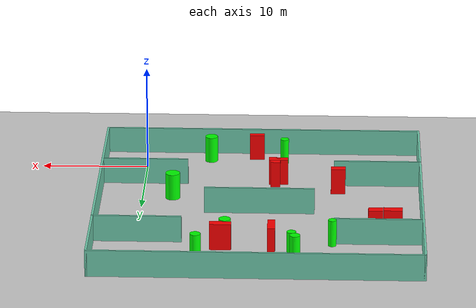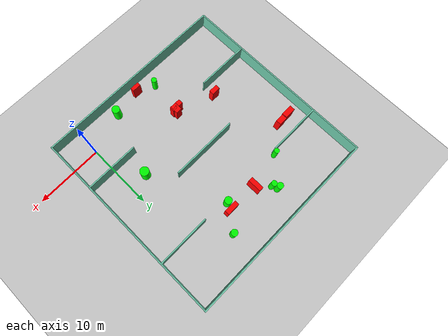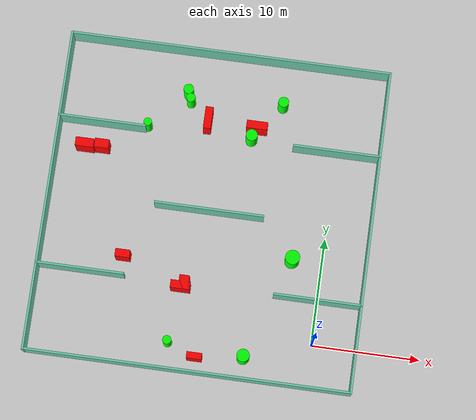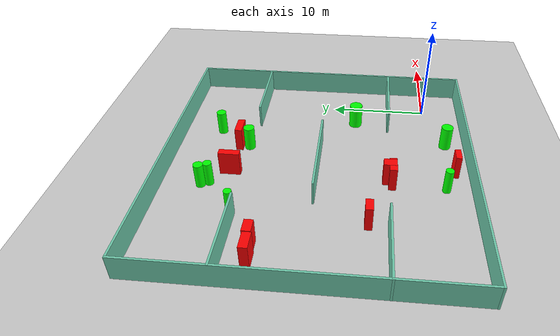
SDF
<sdf version="1.7">
 <world name="default">
  <light name="sun" type="directional">
   <pose>0 0 10 0 -0 0</pose>
   <diffuse>0.8 0.8 0.8 1</diffuse>
   <specular>0.2 0.2 0.2 1</specular>
   <attenuation>
    <range>1000</range>
    <constant>0.9</constant>
    <linear>0.01</linear>
    <quadratic>0.001</quadratic>
   </attenuation>
   <direction>-0.5 0.1 -0.9</direction>
   <spot><inner_angle>0</inner_angle><outer_angle>0</outer_angle><falloff>0</falloff></spot>
  </light>
  <model name="ground_plane">
   <static>1</static>
   <link name="link">
    <collision name="collision">
     <geometry><plane><normal>0 0 1</normal><size>100 100</size></plane></geometry>
     <surface>
      <contact><collide_bitmask>65535</collide_bitmask></contact>
      <friction><ode><mu>100</mu><mu2>50</mu2></ode></friction>
     </surface>
    </collision>
    <visual name="visual">
     <cast_shadows>0</cast_shadows>
     <geometry><plane><normal>0 0 1</normal><size>100 100</size></plane></geometry>
     <material>
      <script><uri>file://media/materials/scripts/gazebo.material</uri><name>Gazebo/Grey</name></script>
     </material>
    </visual>
   </link>
  </model>
  <gravity>0 0 -9.8</gravity>
  <magnetic_field>6e-06 2.3e-05 -4.2e-05</magnetic_field>
  <atmosphere type="adiabatic"/>
  <physics type="ode">
   <max_step_size>0.001</max_step_size>
   <real_time_factor>1</real_time_factor>
   <real_time_update_rate>1000</real_time_update_rate>
  </physics>
  <scene><ambient>0.4 0.4 0.4 1</ambient><background>0.7 0.7 0.7 1</background><shadows>1</shadows></scene>
  <spherical_coordinates>
   <surface_model>EARTH_WGS84</surface_model>
   <latitude_deg>0</latitude_deg>
   <longitude_deg>0</longitude_deg>
   <elevation>0</elevation>
   <heading_deg>0</heading_deg>
  </spherical_coordinates>
  <model name="my_base_walls">
   <link name="Wall_10">
    <collision name="Wall_10_Collision">
     <geometry><box><size>8.2 0.2 2.5</size></box></geometry>
     <pose>0 0 1.25 0 -0 0</pose>
    </collision>
    <visual name="Wall_10_Visual">
     <pose>0 0 1.25 0 -0 0</pose>
     <geometry><box><size>8.2 0.2 2.5</size></box></geometry>
     <material>
      <script><uri>file://media/materials/scripts/gazebo.material</uri><name>Gazebo/Grey</name></script>
      <ambient>0.435294 0.796078 0.67451 1</ambient>
     </material>
     <meta><layer>0</layer></meta>
    </visual>
    <pose>-11 -7 0 0 -0 0</pose>
   </link>
   <link name="Wall_12">
    <collision name="Wall_12_Collision">
     <geometry><box><size>8.2 0.2 2.5</size></box></geometry>
     <pose>0 0 1.25 0 -0 0</pose>
    </collision>
    <visual name="Wall_12_Visual">
     <pose>0 0 1.25 0 -0 0</pose>
     <geometry><box><size>8.2 0.2 2.5</size></box></geometry>
     <material>
      <script><uri>file://media/materials/scripts/gazebo.material</uri><name>Gazebo/Grey</name></script>
      <ambient>0.435294 0.796078 0.67451 1</ambient>
     </material>
     <meta><layer>0</layer></meta>
    </visual>
    <pose>-11 7 0 0 -0 0</pose>
   </link>
   <link name="Wall_14">
    <collision name="Wall_14_Collision">
     <geometry><box><size>8.2 0.2 2.5</size></box></geometry>
     <pose>0 0 1.25 0 -0 0</pose>
    </collision>
    <visual name="Wall_14_Visual">
     <pose>0 0 1.25 0 -0 0</pose>
     <geometry><box><size>8.2 0.2 2.5</size></box></geometry>
     <material>
      <script><uri>file://media/materials/scripts/gazebo.material</uri><name>Gazebo/Grey</name></script>
      <ambient>0.435294 0.796078 0.67451 1</ambient>
     </material>
     <meta><layer>0</layer></meta>
    </visual>
    <pose>11 7 0 0 -0 3.14159</pose>
   </link>
   <link name="Wall_16">
    <collision name="Wall_16_Collision">
     <geometry><box><size>10.2 0.2 2.5</size></box></geometry>
     <pose>0 0 1.25 0 -0 0</pose>
    </collision>
    <visual name="Wall_16_Visual">
     <pose>0 0 1.25 0 -0 0</pose>
     <geometry><box><size>10.2 0.2 2.5</size></box></geometry>
     <material>
      <script><uri>file://media/materials/scripts/gazebo.material</uri><name>Gazebo/Grey</name></script>
      <ambient>0.435294 0.796078 0.67451 1</ambient>
     </material>
     <meta><layer>0</layer></meta>
    </visual>
    <pose>0 0 0 0 -0 3.14159</pose>
   </link>
   <link name="Wall_2">
    <collision name="Wall_2_Collision">
     <geometry><box><size>30.2 0.2 2.5</size></box></geometry>
     <pose>0 0 1.25 0 -0 0</pose>
    </collision>
    <visual name="Wall_2_Visual">
     <pose>0 0 1.25 0 -0 0</pose>
     <geometry><box><size>30.2 0.2 2.5</size></box></geometry>
     <material>
      <script><uri>file://media/materials/scripts/gazebo.material</uri><name>Gazebo/Grey</name></script>
      <ambient>0.435294 0.796078 0.67451 1</ambient>
     </material>
     <meta><layer>0</layer></meta>
    </visual>
    <pose>0 -15 0 0 -0 3.14159</pose>
   </link>
   <link name="Wall_3">
    <collision name="Wall_3_Collision">
     <geometry><box><size>30.2 0.2 2.5</size></box></geometry>
     <pose>0 0 1.25 0 -0 0</pose>
    </collision>
    <visual name="Wall_3_Visual">
     <pose>0 0 1.25 0 -0 0</pose>
     <geometry><box><size>30.2 0.2 2.5</size></box></geometry>
     <material>
      <script><uri>file://media/materials/scripts/gazebo.material</uri><name>Gazebo/Grey</name></script>
      <ambient>0.435294 0.796078 0.67451 1</ambient>
     </material>
     <meta><layer>0</layer></meta>
    </visual>
    <pose>-15 0 0 0 -0 1.5708</pose>
   </link>
   <link name="Wall_4">
    <collision name="Wall_4_Collision">
     <geometry><box><size>30.2 0.2 2.5</size></box></geometry>
     <pose>0 0 1.25 0 -0 0</pose>
    </collision>
    <visual name="Wall_4_Visual">
     <pose>0 0 1.25 0 -0 0</pose>
     <geometry><box><size>30.2 0.2 2.5</size></box></geometry>
     <material>
      <script><uri>file://media/materials/scripts/gazebo.material</uri><name>Gazebo/Grey</name></script>
      <ambient>0.435294 0.796078 0.67451 1</ambient>
     </material>
     <meta><layer>0</layer></meta>
    </visual>
    <pose>0 15 0 0 -0 0</pose>
   </link>
   <link name="Wall_6">
    <collision name="Wall_6_Collision">
     <geometry><box><size>30.2 0.2 2.5</size></box></geometry>
     <pose>0 0 1.25 0 -0 0</pose>
    </collision>
    <visual name="Wall_6_Visual">
     <pose>0 0 1.25 0 -0 0</pose>
     <geometry><box><size>30.2 0.2 2.5</size></box></geometry>
     <material>
      <script><uri>file://media/materials/scripts/gazebo.material</uri><name>Gazebo/Grey</name></script>
      <ambient>0.435294 0.796078 0.67451 1</ambient>
     </material>
     <meta><layer>0</layer></meta>
    </visual>
    <pose>15 0 0 0 -0 1.5708</pose>
   </link>
   <link name="Wall_8">
    <collision name="Wall_8_Collision">
     <geometry><box><size>8.2 0.2 2.5</size></box></geometry>
     <pose>0 0 1.25 0 -0 0</pose>
    </collision>
    <visual name="Wall_8_Visual">
     <pose>0 0 1.25 0 -0 0</pose>
     <geometry><box><size>8.2 0.2 2.5</size></box></geometry>
     <material>
      <script><uri>file://media/materials/scripts/gazebo.material</uri><name>Gazebo/Grey</name></script>
      <ambient>0.435294 0.796078 0.67451 1</ambient>
     </material>
     <meta><layer>0</layer></meta>
    </visual>
    <pose>11 -7 0 0 -0 3.14159</pose>
   </link>
   <static>1</static>
   <pose>-11 11 0 0 -0 0</pose>
  </model>
  <model name="cylinder1">
   <static>1</static>
   <link name="link">
    <inertial>
     <mass>1</mass>
     <inertia><ixx>0.5</ixx><ixy>0</ixy><ixz>0</ixz><iyy>0.5</iyy><iyz>0</iyz><izz>1</izz></inertia>
    </inertial>
    <collision name="collision">
     <geometry><cylinder><radius>0.5479734818593228</radius><length>2.5</length></cylinder></geometry>
    </collision>
    <visual name="visual">
     <geometry><cylinder><radius>0.5479734818593228</radius><length>2.5</length></cylinder></geometry>
     <material>
      <ambient>0 1 0 1</ambient>
      <diffuse>0 1 0 1</diffuse>
      <specular>0.1 0.1 0.1 1</specular>
      <emissive>0 0 0 0</emissive>
     </material>
    </visual>
   </link>
   <pose>-8.03016272698181 18.43455614237035 1.25 0 0 0</pose>
  </model>
  <model name="cylinder2">
   <static>1</static>
   <link name="link">
    <inertial>
     <mass>1</mass>
     <inertia><ixx>0.5</ixx><ixy>0</ixy><ixz>0</ixz><iyy>0.5</iyy><iyz>0</iyz><izz>1</izz></inertia>
    </inertial>
    <collision name="collision">
     <geometry><cylinder><radius>0.49195639076767095</radius><length>2.5</length></cylinder></geometry>
    </collision>
    <visual name="visual">
     <geometry><cylinder><radius>0.49195639076767095</radius><length>2.5</length></cylinder></geometry>
     <material>
      <ambient>0 1 0 1</ambient>
      <diffuse>0 1 0 1</diffuse>
      <specular>0.1 0.1 0.1 1</specular>
      <emissive>0 0 0 0</emissive>
     </material>
    </visual>
   </link>
   <pose>-5.5101388217289085 21.93854399184068 1.25 0 0 0</pose>
  </model>
  <model name="cylinder3">
   <static>1</static>
   <link name="link">
    <inertial>
     <mass>1</mass>
     <inertia><ixx>0.5</ixx><ixy>0</ixy><ixz>0</ixz><iyy>0.5</iyy><iyz>0</iyz><izz>1</izz></inertia>
    </inertial>
    <collision name="collision">
     <geometry><cylinder><radius>0.5937470883910921</radius><length>2.5</length></cylinder></geometry>
    </collision>
    <visual name="visual">
     <geometry><cylinder><radius>0.5937470883910921</radius><length>2.5</length></cylinder></geometry>
     <material>
      <ambient>0 1 0 1</ambient>
      <diffuse>0 1 0 1</diffuse>
      <specular>0.1 0.1 0.1 1</specular>
      <emissive>0 0 0 0</emissive>
     </material>
    </visual>
   </link>
   <pose>-6.090874501344276 -1.9652565203216508 1.25 0 0 0</pose>
  </model>
  <model name="cylinder4">
   <static>1</static>
   <link name="link">
    <inertial>
     <mass>1</mass>
     <inertia><ixx>0.5</ixx><ixy>0</ixy><ixz>0</ixz><iyy>0.5</iyy><iyz>0</iyz><izz>1</izz></inertia>
    </inertial>
    <collision name="collision">
     <geometry><cylinder><radius>0.3745364907654964</radius><length>2.5</length></cylinder></geometry>
    </collision>
    <visual name="visual">
     <geometry><cylinder><radius>0.3745364907654964</radius><length>2.5</length></cylinder></geometry>
     <material>
      <ambient>0 1 0 1</ambient>
      <diffuse>0 1 0 1</diffuse>
      <specular>0.1 0.1 0.1 1</specular>
      <emissive>0 0 0 0</emissive>
     </material>
    </visual>
   </link>
   <pose>-17.77034825846631 18.39316986862227 1.25 0 0 0</pose>
  </model>
  <model name="cylinder5">
   <static>1</static>
   <link name="link">
    <inertial>
     <mass>1</mass>
     <inertia><ixx>0.5</ixx><ixy>0</ixy><ixz>0</ixz><iyy>0.5</iyy><iyz>0</iyz><izz>1</izz></inertia>
    </inertial>
    <collision name="collision">
     <geometry><cylinder><radius>0.4149021883178938</radius><length>2.5</length></cylinder></geometry>
    </collision>
    <visual name="visual">
     <geometry><cylinder><radius>0.4149021883178938</radius><length>2.5</length></cylinder></geometry>
     <material>
      <ambient>0 1 0 1</ambient>
      <diffuse>0 1 0 1</diffuse>
      <specular>0.1 0.1 0.1 1</specular>
      <emissive>0 0 0 0</emissive>
     </material>
    </visual>
   </link>
   <pose>-14.103676590254477 21.211477553081796 1.25 0 0 0</pose>
  </model>
  <model name="cylinder6">
   <static>1</static>
   <link name="link">
    <inertial>
     <mass>1</mass>
     <inertia><ixx>0.5</ixx><ixy>0</ixy><ixz>0</ixz><iyy>0.5</iyy><iyz>0</iyz><izz>1</izz></inertia>
    </inertial>
    <collision name="collision">
     <geometry><cylinder><radius>0.6753220419875383</radius><length>2.5</length></cylinder></geometry>
    </collision>
    <visual name="visual">
     <geometry><cylinder><radius>0.6753220419875383</radius><length>2.5</length></cylinder></geometry>
     <material>
      <ambient>0 1 0 1</ambient>
      <diffuse>0 1 0 1</diffuse>
      <specular>0.1 0.1 0.1 1</specular>
      <emissive>0 0 0 0</emissive>
     </material>
    </visual>
   </link>
   <pose>-2.802562257804837 7.557436805366613 1.25 0 0 0</pose>
  </model>
  <model name="cylinder7">
   <static>1</static>
   <link name="link">
    <inertial>
     <mass>1</mass>
     <inertia><ixx>0.5</ixx><ixy>0</ixy><ixz>0</ixz><iyy>0.5</iyy><iyz>0</iyz><izz>1</izz></inertia>
    </inertial>
    <collision name="collision">
     <geometry><cylinder><radius>0.46849226567344365</radius><length>2.5</length></cylinder></geometry>
    </collision>
    <visual name="visual">
     <geometry><cylinder><radius>0.46849226567344365</radius><length>2.5</length></cylinder></geometry>
     <material>
      <ambient>0 1 0 1</ambient>
      <diffuse>0 1 0 1</diffuse>
      <specular>0.1 0.1 0.1 1</specular>
      <emissive>0 0 0 0</emissive>
     </material>
    </visual>
   </link>
   <pose>-14.435668449392985 22.008768528029908 1.25 0 0 0</pose>
  </model>
  <model name="cylinder8">
   <static>1</static>
   <link name="link">
    <inertial>
     <mass>1</mass>
     <inertia><ixx>0.5</ixx><ixy>0</ixy><ixz>0</ixz><iyy>0.5</iyy><iyz>0</iyz><izz>1</izz></inertia>
    </inertial>
    <collision name="collision">
     <geometry><cylinder><radius>0.40141972178108953</radius><length>2.5</length></cylinder></geometry>
    </collision>
    <visual name="visual">
     <geometry><cylinder><radius>0.40141972178108953</radius><length>2.5</length></cylinder></geometry>
     <material>
      <ambient>0 1 0 1</ambient>
      <diffuse>0 1 0 1</diffuse>
      <specular>0.1 0.1 0.1 1</specular>
      <emissive>0 0 0 0</emissive>
     </material>
    </visual>
   </link>
   <pose>-13.130313951210624 -1.4878174196754541 1.25 0 0 0</pose>
  </model>
  <model name="box1">
   <static>1</static>
   <link name="link">
    <inertial>
     <mass>1</mass>
     <inertia><ixx>0.083</ixx><ixy>0</ixy><ixz>0</ixz><iyy>0.083</iyy><iyz>0</iyz><izz>0.083</izz></inertia>
    </inertial>
    <collision name="collision">
     <geometry><box><size>1.3460100187199524 0.7119587468459947 2.5</size></box></geometry>
    </collision>
    <visual name="visual">
     <geometry><box><size>1.3460100187199524 0.7119587468459947 2.5</size></box></geometry>
     <material>
      <ambient>1 0 0 1</ambient>
      <diffuse>1 0 0 1</diffuse>
      <specular>0.1 0.1 0.1 1</specular>
      <emissive>0 0 0 0</emissive>
     </material>
    </visual>
    <sensor name="my_contact" type="contact">
     <contact><collision>box_collision</collision><topic>__default_topic__</topic></contact>
    </sensor>
   </link>
   <pose>-18.287436536222135 5.8542759337482835 1.25 0 0 0</pose>
  </model>
  <model name="box2">
   <static>1</static>
   <link name="link">
    <inertial>
     <mass>1</mass>
     <inertia><ixx>0.083</ixx><ixy>0</ixy><ixz>0</ixz><iyy>0.083</iyy><iyz>0</iyz><izz>0.083</izz></inertia>
    </inertial>
    <collision name="collision">
     <geometry><box><size>1.7108090208988334 0.807151642813303 2.5</size></box></geometry>
    </collision>
    <visual name="visual">
     <geometry><box><size>1.7108090208988334 0.807151642813303 2.5</size></box></geometry>
     <material>
      <ambient>1 0 0 1</ambient>
      <diffuse>1 0 0 1</diffuse>
      <specular>0.1 0.1 0.1 1</specular>
      <emissive>0 0 0 0</emissive>
     </material>
    </visual>
    <sensor name="my_contact" type="contact">
     <contact><collision>box_collision</collision><topic>__default_topic__</topic></contact>
    </sensor>
   </link>
   <pose>-23.282595634305228 15.69006788844965 1.25 0 0 0</pose>
  </model>
  <model name="box3">
   <static>1</static>
   <link name="link">
    <inertial>
     <mass>1</mass>
     <inertia><ixx>0.083</ixx><ixy>0</ixy><ixz>0</ixz><iyy>0.083</iyy><iyz>0</iyz><izz>0.083</izz></inertia>
    </inertial>
    <collision name="collision">
     <geometry><box><size>1.9692649552954316 0.722831361321091 2.5</size></box></geometry>
    </collision>
    <visual name="visual">
     <geometry><box><size>1.9692649552954316 0.722831361321091 2.5</size></box></geometry>
     <material>
      <ambient>1 0 0 1</ambient>
      <diffuse>1 0 0 1</diffuse>
      <specular>0.1 0.1 0.1 1</specular>
      <emissive>0 0 0 0</emissive>
     </material>
    </visual>
    <sensor name="my_contact" type="contact">
     <contact><collision>box_collision</collision><topic>__default_topic__</topic></contact>
    </sensor>
   </link>
   <pose>-7.659222730584373 19.4457123008676 1.25 0 0 0</pose>
  </model>
  <model name="box4">
   <static>1</static>
   <link name="link">
    <inertial>
     <mass>1</mass>
     <inertia><ixx>0.083</ixx><ixy>0</ixy><ixz>0</ixz><iyy>0.083</iyy><iyz>0</iyz><izz>0.083</izz></inertia>
    </inertial>
    <collision name="collision">
     <geometry><box><size>0.9199485302979946 1.2822910331022142 2.5</size></box></geometry>
    </collision>
    <visual name="visual">
     <geometry><box><size>0.9199485302979946 1.2822910331022142 2.5</size></box></geometry>
     <material>
      <ambient>1 0 0 1</ambient>
      <diffuse>1 0 0 1</diffuse>
      <specular>0.1 0.1 0.1 1</specular>
      <emissive>0 0 0 0</emissive>
     </material>
    </visual>
    <sensor name="my_contact" type="contact">
     <contact><collision>box_collision</collision><topic>__default_topic__</topic></contact>
    </sensor>
   </link>
   <pose>-12.3534071867707 3.963018585330265 1.25 0 0 0</pose>
  </model>
  <model name="box5">
   <static>1</static>
   <link name="link">
    <inertial>
     <mass>1</mass>
     <inertia><ixx>0.083</ixx><ixy>0</ixy><ixz>0</ixz><iyy>0.083</iyy><iyz>0</iyz><izz>0.083</izz></inertia>
    </inertial>
    <collision name="collision">
     <geometry><box><size>0.6977694904003198 2.061683863317608 2.5</size></box></geometry>
    </collision>
    <visual name="visual">
     <geometry><box><size>0.6977694904003198 2.061683863317608 2.5</size></box></geometry>
     <material>
      <ambient>1 0 0 1</ambient>
      <diffuse>1 0 0 1</diffuse>
      <specular>0.1 0.1 0.1 1</specular>
      <emissive>0 0 0 0</emissive>
     </material>
    </visual>
    <sensor name="my_contact" type="contact">
     <contact><collision>box_collision</collision><topic>__default_topic__</topic></contact>
    </sensor>
   </link>
   <pose>-12.266185656869625 19.540534094262973 1.25 0 0 0</pose>
  </model>
  <model name="box6">
   <static>1</static>
   <link name="link">
    <inertial>
     <mass>1</mass>
     <inertia><ixx>0.083</ixx><ixy>0</ixy><ixz>0</ixz><iyy>0.083</iyy><iyz>0</iyz><izz>0.083</izz></inertia>
    </inertial>
    <collision name="collision">
     <geometry><box><size>1.390757341791685 0.5763011608849117 2.5</size></box></geometry>
    </collision>
    <visual name="visual">
     <geometry><box><size>1.390757341791685 0.5763011608849117 2.5</size></box></geometry>
     <material>
      <ambient>1 0 0 1</ambient>
      <diffuse>1 0 0 1</diffuse>
      <specular>0.1 0.1 0.1 1</specular>
      <emissive>0 0 0 0</emissive>
     </material>
    </visual>
    <sensor name="my_contact" type="contact">
     <contact><collision>box_collision</collision><topic>__default_topic__</topic></contact>
    </sensor>
   </link>
   <pose>-10.487263551914545 -2.5722488427183734 1.25 0 0 0</pose>
  </model>
  <model name="box7">
   <static>1</static>
   <link name="link">
    <inertial>
     <mass>1</mass>
     <inertia><ixx>0.083</ixx><ixy>0</ixy><ixz>0</ixz><iyy>0.083</iyy><iyz>0</iyz><izz>0.083</izz></inertia>
    </inertial>
    <collision name="collision">
     <geometry><box><size>1.3252290464083667 0.828021412768267 2.5</size></box></geometry>
    </collision>
    <visual name="visual">
     <geometry><box><size>1.3252290464083667 0.828021412768267 2.5</size></box></geometry>
     <material>
      <ambient>1 0 0 1</ambient>
      <diffuse>1 0 0 1</diffuse>
      <specular>0.1 0.1 0.1 1</specular>
      <emissive>0 0 0 0</emissive>
     </material>
    </visual>
    <sensor name="my_contact" type="contact">
     <contact><collision>box_collision</collision><topic>__default_topic__</topic></contact>
    </sensor>
   </link>
   <pose>-21.690988369604746 15.790181506912546 1.25 0 0 0</pose>
  </model>
  <model name="box8">
   <static>1</static>
   <link name="link">
    <inertial>
     <mass>1</mass>
     <inertia><ixx>0.083</ixx><ixy>0</ixy><ixz>0</ixz><iyy>0.083</iyy><iyz>0</iyz><izz>0.083</izz></inertia>
    </inertial>
    <collision name="collision">
     <geometry><box><size>1.800275338975169 0.7275007405981988 2.5</size></box></geometry>
    </collision>
    <visual name="visual">
     <geometry><box><size>1.800275338975169 0.7275007405981988 2.5</size></box></geometry>
     <material>
      <ambient>1 0 0 1</ambient>
      <diffuse>1 0 0 1</diffuse>
      <specular>0.1 0.1 0.1 1</specular>
      <emissive>0 0 0 0</emissive>
     </material>
    </visual>
    <sensor name="my_contact" type="contact">
     <contact><collision>box_collision</collision><topic>__default_topic__</topic></contact>
    </sensor>
   </link>
   <pose>-12.642480394666565 3.6797559015713652 1.25 0 0 0</pose>
  </model>
 </world>
</sdf>
